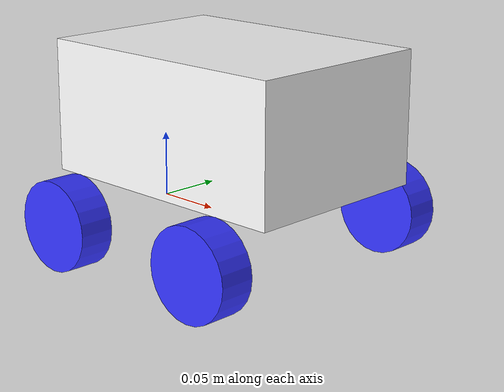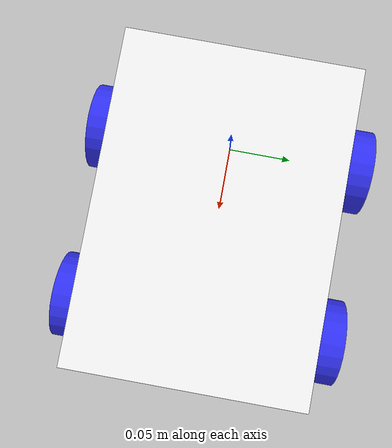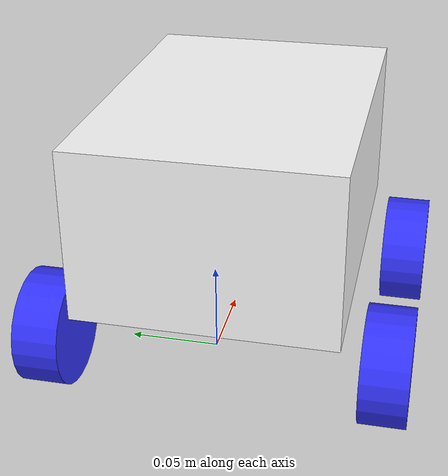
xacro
<?xml version="1.0"?>
<robot xmlns:xacro="http://www.ros.org/wiki/xacro">

    <xacro:include filename="inertial_macros.xacro"/>

    <material name="white">
        <color rgba="1 1 1 1"/>
    </material>

    <material name="orange">
        <color rgba="1 0.3 0.1 1"/>
    </material>

    <material name="blue">
        <color rgba="0.2 0.2 1 1"/>
    </material>

    <material name="black">
        <color rgba="0 0 0 1"/>
    </material>

    <link name="base_link">
    </link>

    <joint name="chassis_joint" type="fixed">
        <parent link="base_link"/>
        <child link="chassis"/>
        <origin xyz="-0.035 0 0"/>
    </joint>

    <link name="chassis">
        <visual>
            <!-- The z axis is half the chasis height plus the 29 mills that we are
            above the wheels -->
            <origin xyz="0.105 0 0.079"/>
            <geometry>
                <box size="0.21 0.15 0.1"/>
            </geometry>
            <material name="white"/>
        </visual>
        <collision>
            <!-- The z axis is half the chasis height plus the 29 mills that we are
            above the wheels -->
            <origin xyz="0.105 0 0.079"/>
            <geometry>
                <box size="0.21 0.15 0.1"/>
            </geometry>
        </collision>
        <xacro:inertial_box mass="0.5" x="0.21" y="0.15" z="0.1">
            <origin xyz="0.105 0 0.079" rpy="0 0 0"/>
        </xacro:inertial_box>
    </link>

    <joint name="front_left_wheel_joint" type="continuous">
        <parent link="base_link"/>
        <child  link="front_left_wheel"/>
        <origin xyz="0.14 0.0985 0" rpy="-${pi/2} 0 0"/>
        <axis xyz="0 0 1"/>
    </joint>

    <link name="front_left_wheel">
        <visual>
            <geometry>
                <cylinder radius="0.034" length="0.027"/>
            </geometry>
            <material name="blue"/>
        </visual>
        <collision>
            <geometry>
                <cylinder radius="0.034" length="0.027"/>
            </geometry>
        </collision>
        <xacro:inertial_cylinder mass="0.1" radius="0.034" length="0.027">
            <origin xyz="0 0 0" rpy="0 0 0"/>
        </xacro:inertial_cylinder>
    </link>

    <joint name="rear_left_wheel_joint" type="continuous">
        <parent link="base_link"/>
        <child  link="rear_left_wheel"/>
        <origin xyz="0 0.0985 0" rpy="-${pi/2} 0 0"/>
        <axis xyz="0 0 1"/>
    </joint>

    <link name="rear_left_wheel">
        <visual>
            <geometry>
                <cylinder radius="0.034" length="0.027"/>
            </geometry>
            <material name="blue"/>
        </visual>
        <collision>
            <geometry>
                <cylinder radius="0.034" length="0.027"/>
            </geometry>
        </collision>
        <xacro:inertial_cylinder mass="0.1" radius="0.034" length="0.027">
            <origin xyz="0 0 0" rpy="0 0 0"/>
        </xacro:inertial_cylinder>
    </link>

    <joint name="front_right_wheel_joint" type="continuous">
        <parent link="base_link"/>
        <child  link="front_right_wheel"/>
        <origin xyz="0.14 -0.0985 0" rpy="${pi/2} 0 0"/>
        <axis xyz="0 0 -1"/>
    </joint>

    <link name="front_right_wheel">
        <visual>
            <geometry>
                <cylinder radius="0.034" length="0.027"/>
            </geometry>
            <material name="blue"/>
        </visual>
        <collision>
            <geometry>
                <cylinder radius="0.034" length="0.027"/>
            </geometry>
        </collision>
        <xacro:inertial_cylinder mass="0.1" radius="0.034" length="0.027">
            <origin xyz="0 0 0" rpy="0 0 0"/>
        </xacro:inertial_cylinder>
    </link>

    <joint name="rear_right_wheel_joint" type="continuous">
        <parent link="base_link"/>
        <child  link="rear_right_wheel"/>
        <origin xyz="0 -0.0985 0" rpy="${pi/2} 0 0"/>
        <axis xyz="0 0 -1"/>
    </joint>

    <link name="rear_right_wheel">
        <visual>
            <geometry>
                <cylinder radius="0.034" length="0.027"/>
            </geometry>
            <material name="blue"/>
        </visual>
        <collision>
            <geometry>
                <cylinder radius="0.034" length="0.027"/>
            </geometry>
        </collision>
        <xacro:inertial_cylinder mass="0.1" radius="0.034" length="0.027">
            <origin xyz="0 0 0" rpy="0 0 0"/>
        </xacro:inertial_cylinder>
    </link>
</robot>
